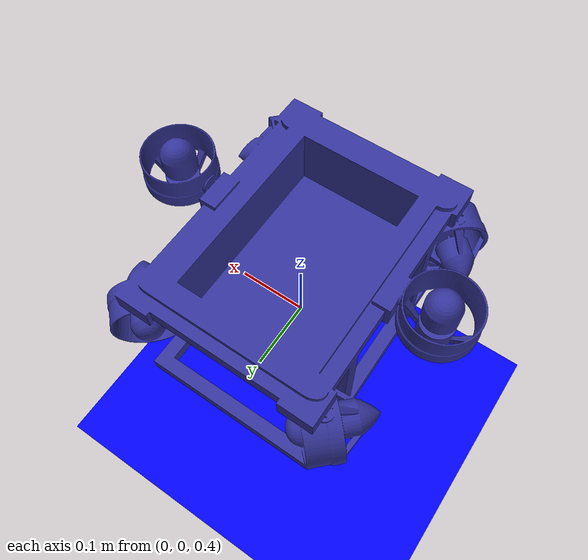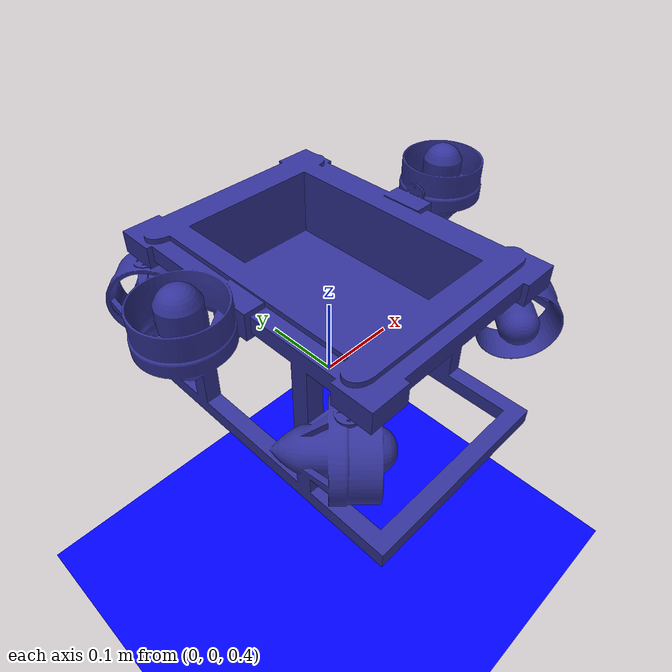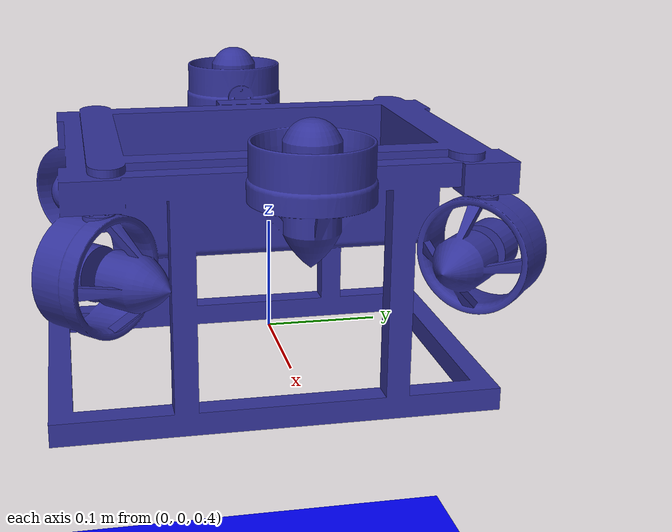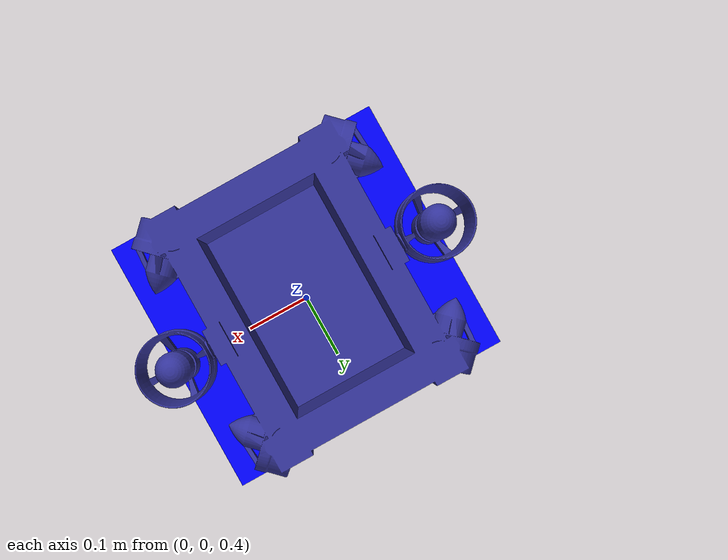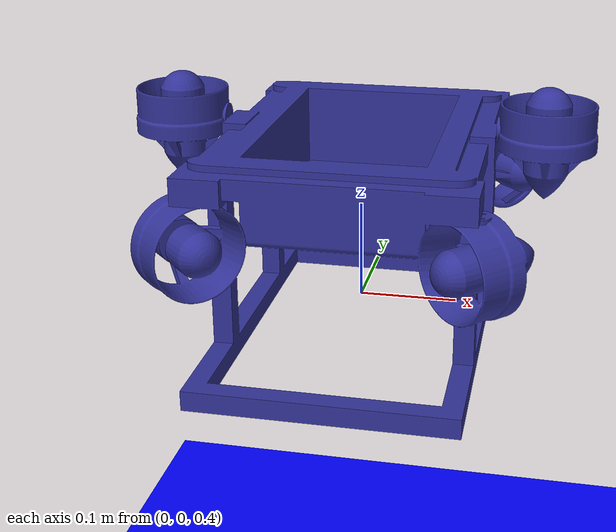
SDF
<?xml version="1.0" ?>
<sdf version="1.10">
    <!-- IMPORTANT
        Ensure that Gazebo Can find the custom plugins created in this world by typing the following command in the terminal:
        "export GZ_SIM_SYSTEM_PLUGIN_PATH=`pwd`"
    -->
    <world name="WaterwitchOceanWorld">
        <physics name="1ms" type="ignored">
            <max_step_size>0.003</max_step_size>
            <real_time_factor>1.0</real_time_factor>
        </physics>
        <plugin
            filename="gz-sim-physics-system"
            name="gz::sim::systems::Physics">
        </plugin>
        <plugin
            filename="gz-sim-sensors-system"
            name="gz::sim::systems::Sensors">
            <render_engine>ogre2</render_engine>
        </plugin>
        <plugin
            filename="gz-sim-imu-system"
            name="gz::sim::systems::Imu">
        </plugin>
        <plugin
            filename="gz-sim-user-commands-system"
            name="gz::sim::systems::UserCommands">
        </plugin>
        <plugin
            filename="gz-sim-scene-broadcaster-system"
            name="gz::sim::systems::SceneBroadcaster">
        </plugin>
        <light type="directional" name="sun">
            <cast_shadows>true</cast_shadows>
            <pose>0 0 10 0 0 0</pose>
            <diffuse>0.8 0.8 0.8 1</diffuse>
            <specular>0.2 0.2 0.2 1</specular>
            <attenuation>
                <range>1000</range>
                <constant>0.9</constant>
                <linear>0.01</linear>
                <quadratic>0.001</quadratic>
            </attenuation>
            <direction>-0.5 0.1 -0.9</direction>
        </light>
        <model name='water_plane'>
            <static>true</static>
            <link name='link'>
              <visual name='water_plane'>
                <geometry>
                  <plane>
                    <size>100 100</size>
                    <normal>0 0 1</normal>
                  </plane>
                </geometry>
                <material>
                  <ambient>0 0 1 0.5</ambient>
                  <diffuse>0 0 1 0.5</diffuse>
                  <specular>0 0 1 0.5</specular>
                </material>
              </visual>
              <pose>0 0 0 0 0 0</pose>
              <inertial>
                <pose>0 0 0 0 0 0</pose>
                <mass>1</mass>
                <inertia>
                  <ixx>1</ixx>
                  <ixy>0</ixy>
                  <ixz>0</ixz>
                  <iyy>1</iyy>
                  <iyz>0</iyz>
                  <izz>1</izz>
                </inertia>
              </inertial>
              <enable_wind>false</enable_wind>
            </link>
            <pose>0 0 0 0 0 0</pose>
            <self_collide>false</self_collide>
          </model>
        <model name="ground_plane">
            <static>true</static>
            <pose>0 0 -4 0 0 0</pose>
            <link name="link">
                <collision name="collision">
                <geometry>
                    <plane>
                    <normal>0 0 1</normal>
                    </plane>
                </geometry>
                </collision>
                <visual name="visual">
                <geometry>
                    <plane>
                    <normal>0 0 1</normal>
                    <size>100 100</size>
                    </plane>
                </geometry>
                <material>
                    <ambient>0.8 0.8 0.8 1</ambient>
                    <diffuse>0.8 0.8 0.8 1</diffuse>
                    <specular>0.8 0.8 0.8 1</specular>
                </material>
                </visual>
            </link>
        </model>
        <include>
            <uri>models/Waterwitch</uri>
            <pose>0 0 0.5 0 0 0</pose>
        </include>
    </world>
</sdf>

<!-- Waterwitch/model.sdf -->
<sdf version='1.7'>
  <model name='Waterwitch'>
    <link name='rov_body'>
      <pose>0 0 -0 0 -0 0</pose>
      <inertial>
      <!-- Inertial Properties are based on Onshape Model -->
        <mass>6.907506957916</mass>
        <pose>0 0 0 0 -0 0</pose>
        <inertia>
          <ixx>0.11811426857338</ixx>
          <ixy>0.000004287037566581</ixy>
          <ixz>0.00021516428040741</ixz>
          <iyy>0.1134262861325</iyy>
          <iyz>0.00013587201593205</iyz>
          <izz>0.18179128145474</izz>
        </inertia>
      </inertial>
      <self_collide>0</self_collide>
      <enable_wind>0</enable_wind>
      <kinematic>0</kinematic>
      <gravity>1</gravity>
      <visual name='rov_body_visual'>
        <pose>0 0 0 0 -0 0</pose>
        <geometry>
          <mesh>
            <uri>waterwitch_visual.stl</uri>
            <scale>1 1 1</scale>
          </mesh>
        </geometry>
        <material>
        <shader type='pixel'/>
        <ambient>0.2 0.2 0.6 1</ambient>
        <diffuse>0.2 0.2 0.6 1</diffuse>
        <specular>0.2 0.2 0.6 1</specular>
        <emissive>0.2 0.2 0.6 1</emissive>
        </material>
        <transparency>0</transparency>
        <cast_shadows>0</cast_shadows>
      </visual>
      <collision name='rov_body_collision'>
        <max_contacts>10</max_contacts>
        <pose>0 0 0 0 -0 0</pose>
        <geometry>
          <mesh>
            <uri>waterwitch_collision.stl</uri>
            <scale>1 1 1</scale>
          </mesh>
        </geometry>
      </collision>
    </link>
    <static>0</static>
    <self_collide>0</self_collide>
    <allow_auto_disable>1</allow_auto_disable>
  </model>
</sdf>
